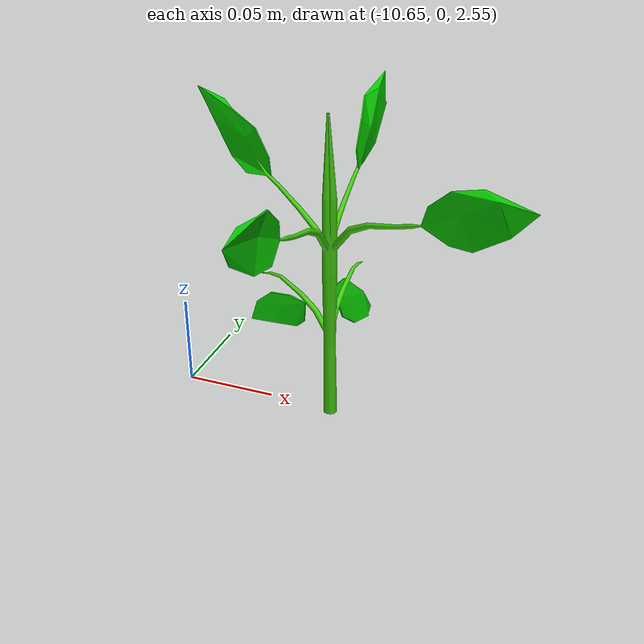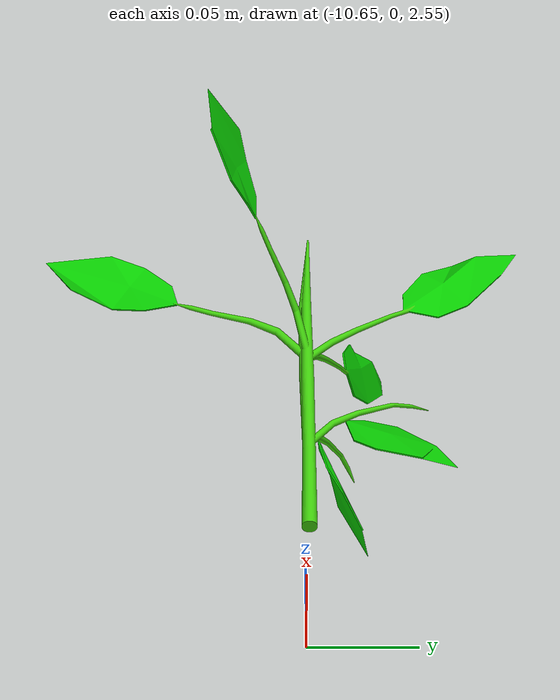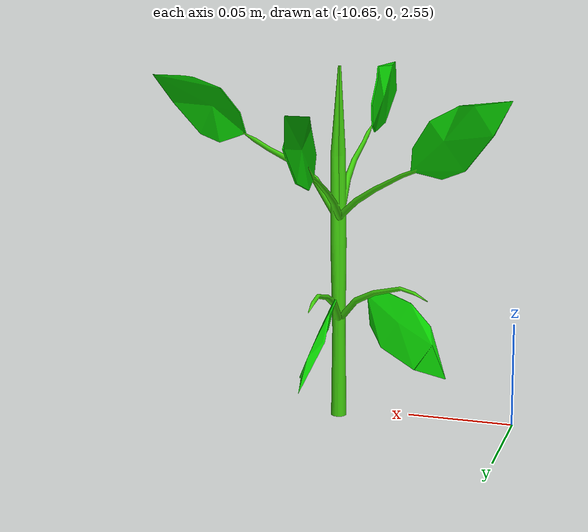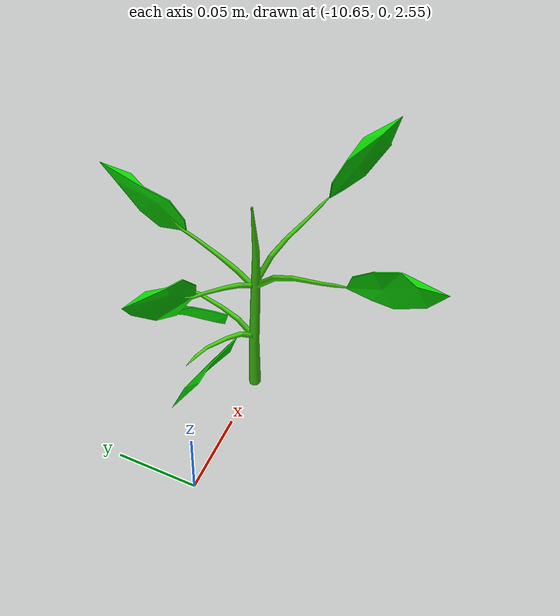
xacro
<robot name="robot">
  <link name="small_plant_Cube.031_link">
    <inertial>
      <origin xyz="0 0 0" rpy="0 0 0" />
      <mass value="1" />
      <inertia ixx="1" ixy="0" ixz="0" iyy="1" iyz="0" izz="1" />
    </inertial>
    <visual>
      <origin xyz="0 0 0" rpy="0 0 0" />
      <geometry>
        <mesh filename="package://rowcrop_world/meshes/small_plant_Cube.031.dae" />
      </geometry>
    </visual>
    <collision>
      <origin xyz="0 0 0" rpy="0 0 0" />
      <geometry>
        <mesh filename="package://rowcrop_world/meshes/small_plant_Cube.031.dae" />
      </geometry>
    </collision>
  </link>

  <gazebo> <static>true</static></gazebo>
</robot>
